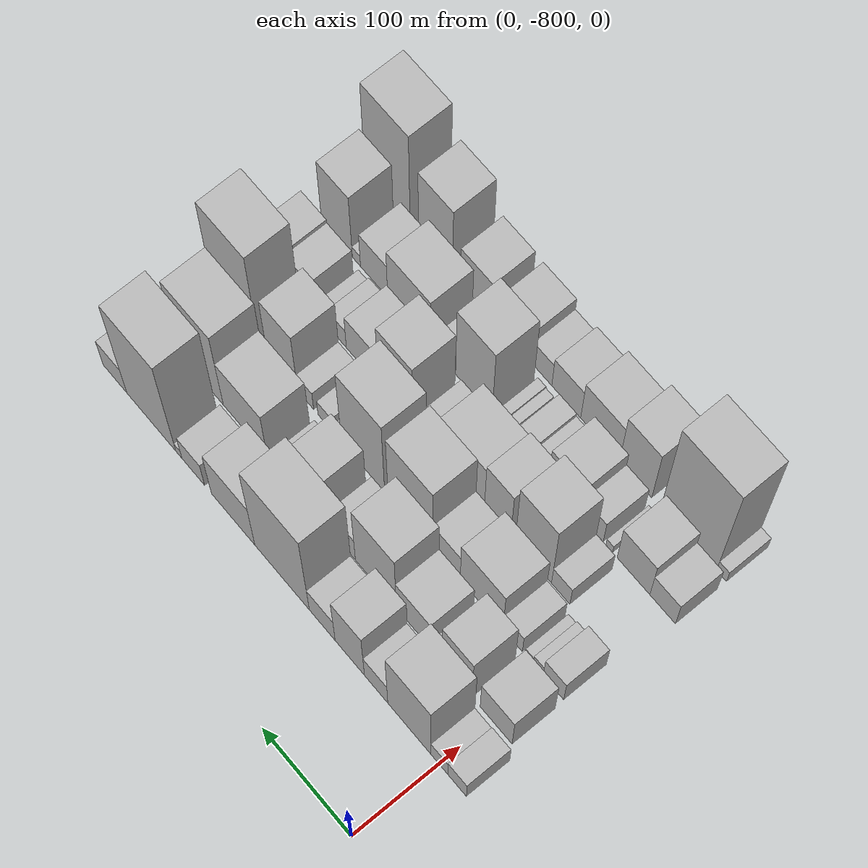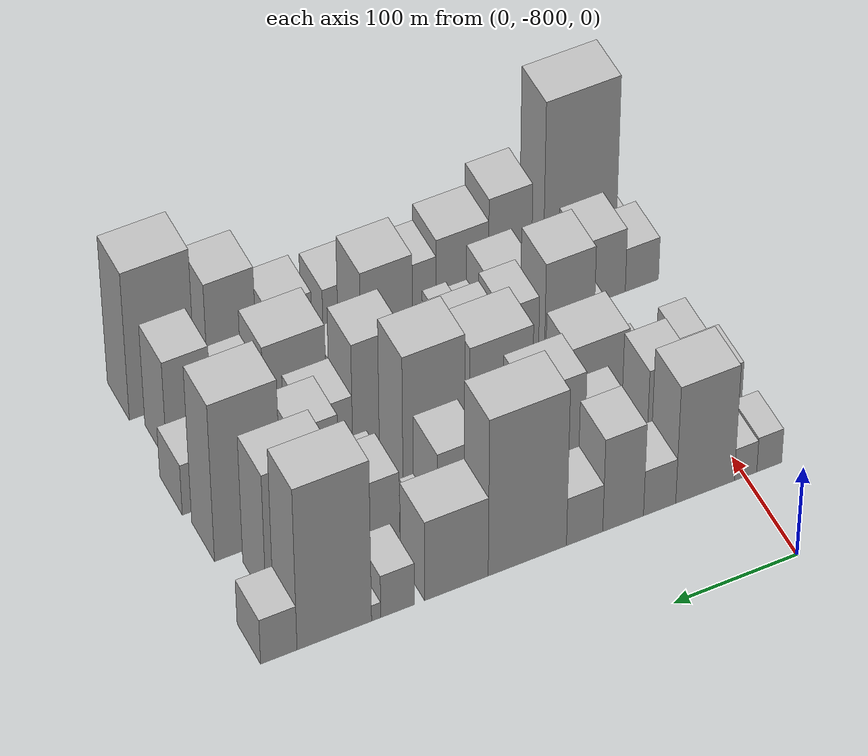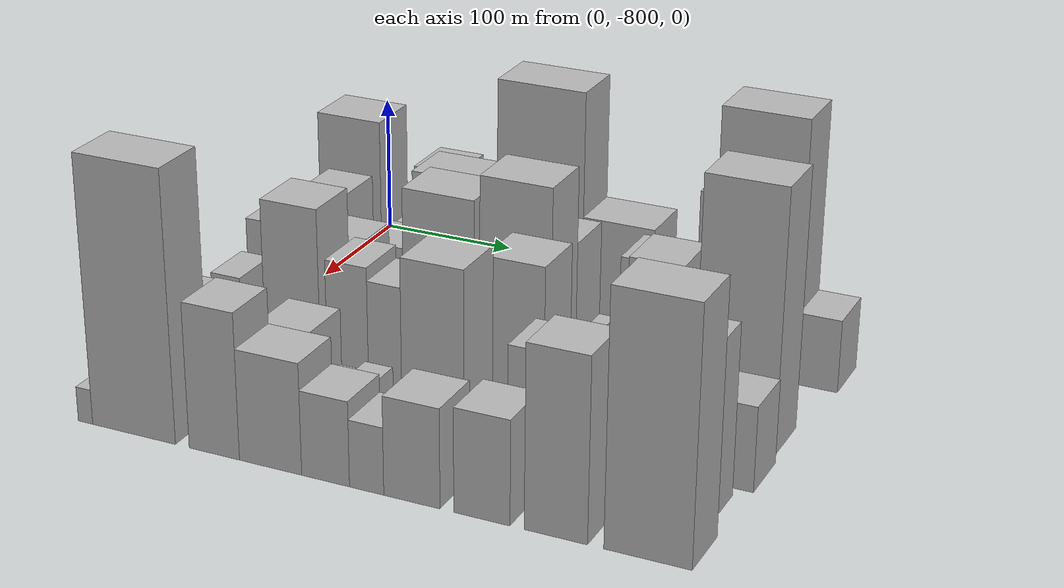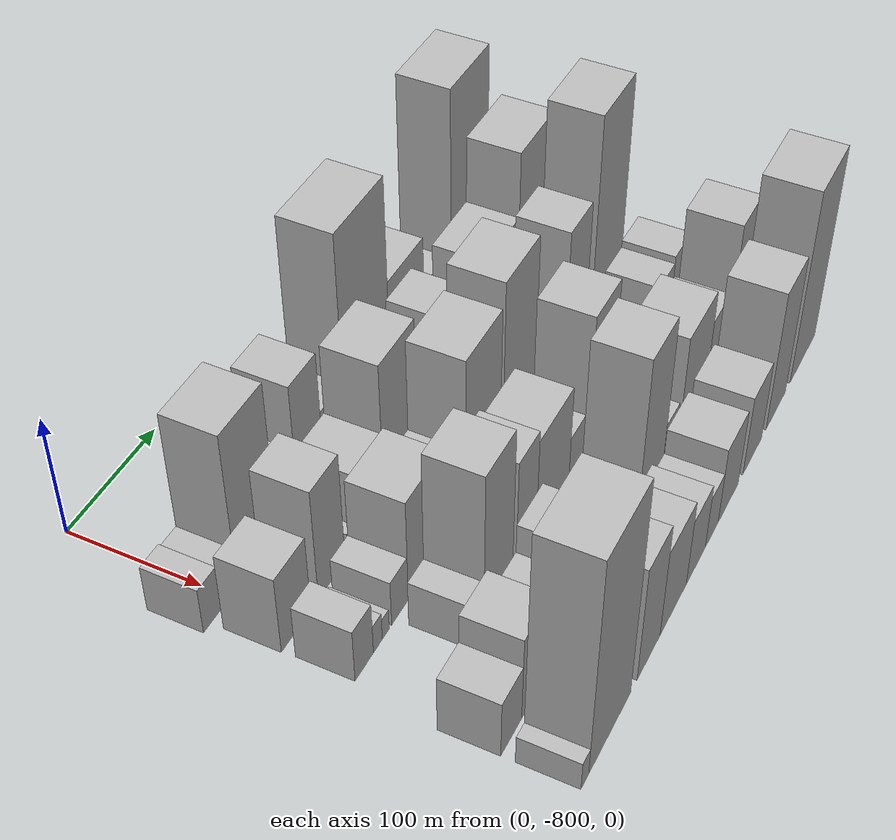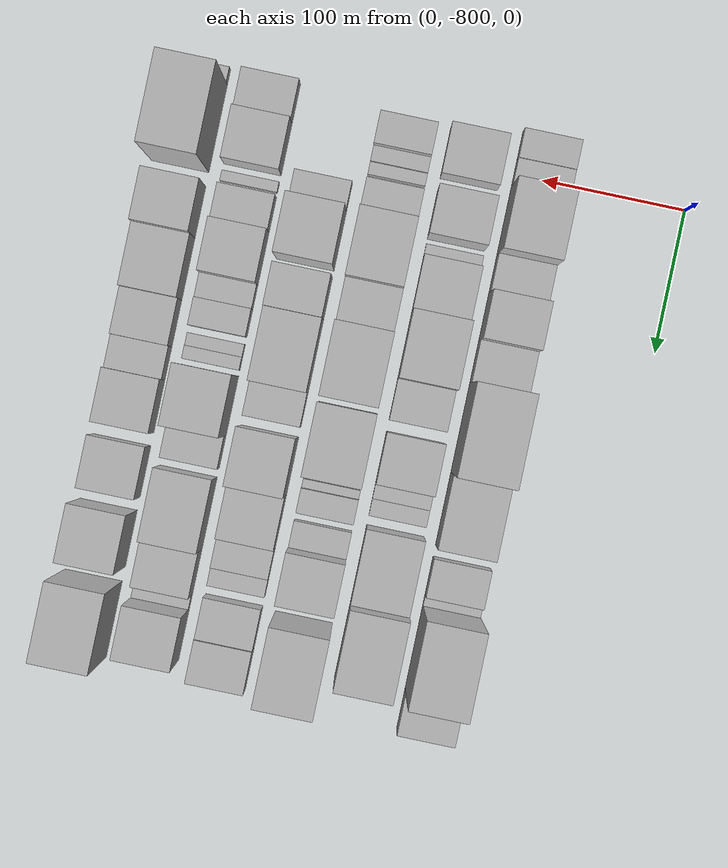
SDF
<sdf version="1.6">
 <world name="default">
  <model name="building_1">
   <static>1</static>
   <pose>100.0000 -819.7387 0 0.000000 0.000000 0.000000</pose>
   <link name="link">
    <pose>0 0 19.50 0 0 0</pose>
    <collision name="collision"><geometry><box><size>40.0000 20.5226 39.0000</size></box></geometry></collision>
    <visual name="visual">
     <cast_shadows>0</cast_shadows>
     <geometry><box><size>40.0000 20.5226 39.0000</size></box></geometry>
     <material>
      <script>
       <uri>model://HANNAS_wall/materials/scripts</uri>
       <uri>model://HANNAS_wall/materials/textures</uri>
       <name>vrc/HANNAS_wall</name>
      </script>
     </material>
    </visual>
   </link>
  </model>
  <model name="building_2">
   <static>1</static>
   <pose>100.0000 -800.1939 0 0.000000 0.000000 0.000000</pose>
   <link name="link">
    <pose>0 0 18.00 0 0 0</pose>
    <collision name="collision"><geometry><box><size>40.0000 18.5668 36.0000</size></box></geometry></collision>
    <visual name="visual">
     <cast_shadows>0</cast_shadows>
     <geometry><box><size>40.0000 18.5668 36.0000</size></box></geometry>
     <material>
      <script>
       <uri>model://HANNAS_wall/materials/scripts</uri>
       <uri>model://HANNAS_wall/materials/textures</uri>
       <name>vrc/HANNAS_wall</name>
      </script>
     </material>
    </visual>
   </link>
  </model>
  <model name="building_3">
   <static>1</static>
   <pose>100.0000 -766.8831 0 0.000000 0.000000 0.000000</pose>
   <link name="link">
    <pose>0 0 66.00 0 0 0</pose>
    <collision name="collision"><geometry><box><size>40.0000 48.0549 132.0000</size></box></geometry></collision>
    <visual name="visual">
     <cast_shadows>0</cast_shadows>
     <geometry><box><size>40.0000 48.0549 132.0000</size></box></geometry>
     <material>
      <script>
       <uri>model://HANNAS_wall/materials/scripts</uri>
       <uri>model://HANNAS_wall/materials/textures</uri>
       <name>vrc/HANNAS_wall</name>
      </script>
     </material>
    </visual>
   </link>
  </model>
  <model name="building_4">
   <static>1</static>
   <pose>100.0000 -729.6831 0 0.000000 0.000000 0.000000</pose>
   <link name="link">
    <pose>0 0 25.50 0 0 0</pose>
    <collision name="collision"><geometry><box><size>40.0000 26.3450 51.0000</size></box></geometry></collision>
    <visual name="visual">
     <cast_shadows>0</cast_shadows>
     <geometry><box><size>40.0000 26.3450 51.0000</size></box></geometry>
     <material>
      <script>
       <uri>model://HANNAS_wall/materials/scripts</uri>
       <uri>model://HANNAS_wall/materials/textures</uri>
       <name>vrc/HANNAS_wall</name>
      </script>
     </material>
    </visual>
   </link>
  </model>
  <model name="building_5">
   <static>1</static>
   <pose>100.0000 -699.9539 0 0.000000 0.000000 0.000000</pose>
   <link name="link">
    <pose>0 0 52.50 0 0 0</pose>
    <collision name="collision"><geometry><box><size>40.0000 33.1135 105.0000</size></box></geometry></collision>
    <visual name="visual">
     <cast_shadows>0</cast_shadows>
     <geometry><box><size>40.0000 33.1135 105.0000</size></box></geometry>
     <material>
      <script>
       <uri>model://HANNAS_wall/materials/scripts</uri>
       <uri>model://HANNAS_wall/materials/textures</uri>
       <name>vrc/HANNAS_wall</name>
      </script>
     </material>
    </visual>
   </link>
  </model>
  <model name="building_6">
   <static>1</static>
   <pose>100.0000 -668.6978 0 0.000000 0.000000 0.000000</pose>
   <link name="link">
    <pose>0 0 27.00 0 0 0</pose>
    <collision name="collision"><geometry><box><size>40.0000 29.3988 54.0000</size></box></geometry></collision>
    <visual name="visual">
     <cast_shadows>0</cast_shadows>
     <geometry><box><size>40.0000 29.3988 54.0000</size></box></geometry>
     <material>
      <script>
       <uri>model://HANNAS_wall/materials/scripts</uri>
       <uri>model://HANNAS_wall/materials/textures</uri>
       <name>vrc/HANNAS_wall</name>
      </script>
     </material>
    </visual>
   </link>
  </model>
  <model name="building_7">
   <static>1</static>
   <pose>100.0000 -622.5215 0 0.000000 0.000000 0.000000</pose>
   <link name="link">
    <pose>0 0 88.50 0 0 0</pose>
    <collision name="collision"><geometry><box><size>40.0000 62.9537 177.0000</size></box></geometry></collision>
    <visual name="visual">
     <cast_shadows>0</cast_shadows>
     <geometry><box><size>40.0000 62.9537 177.0000</size></box></geometry>
     <material>
      <script>
       <uri>model://HANNAS_wall/materials/scripts</uri>
       <uri>model://HANNAS_wall/materials/textures</uri>
       <name>vrc/HANNAS_wall</name>
      </script>
     </material>
    </visual>
   </link>
  </model>
  <model name="building_8">
   <static>1</static>
   <pose>100.0000 -565.6612 0 0.000000 0.000000 0.000000</pose>
   <link name="link">
    <pose>0 0 45.00 0 0 0</pose>
    <collision name="collision"><geometry><box><size>40.0000 50.7670 90.0000</size></box></geometry></collision>
    <visual name="visual">
     <cast_shadows>0</cast_shadows>
     <geometry><box><size>40.0000 50.7670 90.0000</size></box></geometry>
     <material>
      <script>
       <uri>model://HANNAS_wall/materials/scripts</uri>
       <uri>model://HANNAS_wall/materials/textures</uri>
       <name>vrc/HANNAS_wall</name>
      </script>
     </material>
    </visual>
   </link>
  </model>
  <model name="building_9">
   <static>1</static>
   <pose>100.0000 -518.8695 0 0.000000 0.000000 0.000000</pose>
   <link name="link">
    <pose>0 0 24.00 0 0 0</pose>
    <collision name="collision"><geometry><box><size>40.0000 26.8164 48.0000</size></box></geometry></collision>
    <visual name="visual">
     <cast_shadows>0</cast_shadows>
     <geometry><box><size>40.0000 26.8164 48.0000</size></box></geometry>
     <material>
      <script>
       <uri>model://HANNAS_wall/materials/scripts</uri>
       <uri>model://HANNAS_wall/materials/textures</uri>
       <name>vrc/HANNAS_wall</name>
      </script>
     </material>
    </visual>
   </link>
  </model>
  <model name="building_10">
   <static>1</static>
   <pose>100.0000 -501.8255 0 0.000000 0.000000 0.000000</pose>
   <link name="link">
    <pose>0 0 9.00 0 0 0</pose>
    <collision name="collision"><geometry><box><size>40.0000 7.2716 18.0000</size></box></geometry></collision>
    <visual name="visual">
     <cast_shadows>0</cast_shadows>
     <geometry><box><size>40.0000 7.2716 18.0000</size></box></geometry>
     <material>
      <script>
       <uri>model://HANNAS_wall/materials/scripts</uri>
       <uri>model://HANNAS_wall/materials/textures</uri>
       <name>vrc/HANNAS_wall</name>
      </script>
     </material>
    </visual>
   </link>
  </model>
  <model name="building_11">
   <static>1</static>
   <pose>100.0000 -468.8463 0 0.000000 0.000000 0.000000</pose>
   <link name="link">
    <pose>0 0 91.50 0 0 0</pose>
    <collision name="collision"><geometry><box><size>40.0000 58.6867 183.0000</size></box></geometry></collision>
    <visual name="visual">
     <cast_shadows>0</cast_shadows>
     <geometry><box><size>40.0000 58.6867 183.0000</size></box></geometry>
     <material>
      <script>
       <uri>model://HANNAS_wall/materials/scripts</uri>
       <uri>model://HANNAS_wall/materials/textures</uri>
       <name>vrc/HANNAS_wall</name>
      </script>
     </material>
    </visual>
   </link>
  </model>
  <model name="building_12">
   <static>1</static>
   <pose>100.0000 -425.2195 0 0.000000 0.000000 0.000000</pose>
   <link name="link">
    <pose>0 0 25.50 0 0 0</pose>
    <collision name="collision"><geometry><box><size>40.0000 28.5671 51.0000</size></box></geometry></collision>
    <visual name="visual">
     <cast_shadows>0</cast_shadows>
     <geometry><box><size>40.0000 28.5671 51.0000</size></box></geometry>
     <material>
      <script>
       <uri>model://HANNAS_wall/materials/scripts</uri>
       <uri>model://HANNAS_wall/materials/textures</uri>
       <name>vrc/HANNAS_wall</name>
      </script>
     </material>
    </visual>
   </link>
  </model>
  <model name="building_52">
   <static>1</static>
   <pose>149.0000 -804.3664 0 0.000000 0.000000 0.000000</pose>
   <link name="link">
    <pose>0 0 33.00 0 0 0</pose>
    <collision name="collision"><geometry><box><size>40.0000 35.2672 66.0000</size></box></geometry></collision>
    <visual name="visual">
     <cast_shadows>0</cast_shadows>
     <geometry><box><size>40.0000 35.2672 66.0000</size></box></geometry>
     <material>
      <script>
       <uri>model://HANNAS_wall/materials/scripts</uri>
       <uri>model://HANNAS_wall/materials/textures</uri>
       <name>vrc/HANNAS_wall</name>
      </script>
     </material>
    </visual>
   </link>
  </model>
  <model name="building_53">
   <static>1</static>
   <pose>149.0000 -760.9721 0 0.000000 0.000000 0.000000</pose>
   <link name="link">
    <pose>0 0 48.00 0 0 0</pose>
    <collision name="collision"><geometry><box><size>40.0000 33.5213 96.0000</size></box></geometry></collision>
    <visual name="visual">
     <cast_shadows>0</cast_shadows>
     <geometry><box><size>40.0000 33.5213 96.0000</size></box></geometry>
     <material>
      <script>
       <uri>model://HANNAS_wall/materials/scripts</uri>
       <uri>model://HANNAS_wall/materials/textures</uri>
       <name>vrc/HANNAS_wall</name>
      </script>
     </material>
    </visual>
   </link>
  </model>
  <model name="building_54">
   <static>1</static>
   <pose>149.0000 -735.8076 0 0.000000 0.000000 0.000000</pose>
   <link name="link">
    <pose>0 0 10.50 0 0 0</pose>
    <collision name="collision"><geometry><box><size>40.0000 8.8076 21.0000</size></box></geometry></collision>
    <visual name="visual">
     <cast_shadows>0</cast_shadows>
     <geometry><box><size>40.0000 8.8076 21.0000</size></box></geometry>
     <material>
      <script>
       <uri>model://HANNAS_wall/materials/scripts</uri>
       <uri>model://HANNAS_wall/materials/textures</uri>
       <name>vrc/HANNAS_wall</name>
      </script>
     </material>
    </visual>
   </link>
  </model>
  <model name="building_55">
   <static>1</static>
   <pose>149.0000 -712.1371 0 0.000000 0.000000 0.000000</pose>
   <link name="link">
    <pose>0 0 33.00 0 0 0</pose>
    <collision name="collision"><geometry><box><size>40.0000 38.5335 66.0000</size></box></geometry></collision>
    <visual name="visual">
     <cast_shadows>0</cast_shadows>
     <geometry><box><size>40.0000 38.5335 66.0000</size></box></geometry>
     <material>
      <script>
       <uri>model://HANNAS_wall/materials/scripts</uri>
       <uri>model://HANNAS_wall/materials/textures</uri>
       <name>vrc/HANNAS_wall</name>
      </script>
     </material>
    </visual>
   </link>
  </model>
  <model name="building_56">
   <static>1</static>
   <pose>149.0000 -669.6085 0 0.000000 0.000000 0.000000</pose>
   <link name="link">
    <pose>0 0 61.50 0 0 0</pose>
    <collision name="collision"><geometry><box><size>40.0000 46.5236 123.0000</size></box></geometry></collision>
    <visual name="visual">
     <cast_shadows>0</cast_shadows>
     <geometry><box><size>40.0000 46.5236 123.0000</size></box></geometry>
     <material>
      <script>
       <uri>model://HANNAS_wall/materials/scripts</uri>
       <uri>model://HANNAS_wall/materials/textures</uri>
       <name>vrc/HANNAS_wall</name>
      </script>
     </material>
    </visual>
   </link>
  </model>
  <model name="building_57">
   <static>1</static>
   <pose>149.0000 -632.0075 0 0.000000 0.000000 0.000000</pose>
   <link name="link">
    <pose>0 0 25.50 0 0 0</pose>
    <collision name="collision"><geometry><box><size>40.0000 28.6784 51.0000</size></box></geometry></collision>
    <visual name="visual">
     <cast_shadows>0</cast_shadows>
     <geometry><box><size>40.0000 28.6784 51.0000</size></box></geometry>
     <material>
      <script>
       <uri>model://HANNAS_wall/materials/scripts</uri>
       <uri>model://HANNAS_wall/materials/textures</uri>
       <name>vrc/HANNAS_wall</name>
      </script>
     </material>
    </visual>
   </link>
  </model>
  <model name="building_58">
   <static>1</static>
   <pose>149.0000 -591.9641 0 0.000000 0.000000 0.000000</pose>
   <link name="link">
    <pose>0 0 46.50 0 0 0</pose>
    <collision name="collision"><geometry><box><size>40.0000 35.4084 93.0000</size></box></geometry></collision>
    <visual name="visual">
     <cast_shadows>0</cast_shadows>
     <geometry><box><size>40.0000 35.4084 93.0000</size></box></geometry>
     <material>
      <script>
       <uri>model://HANNAS_wall/materials/scripts</uri>
       <uri>model://HANNAS_wall/materials/textures</uri>
       <name>vrc/HANNAS_wall</name>
      </script>
     </material>
    </visual>
   </link>
  </model>
  <model name="building_59">
   <static>1</static>
   <pose>149.0000 -568.5882 0 0.000000 0.000000 0.000000</pose>
   <link name="link">
    <pose>0 0 13.50 0 0 0</pose>
    <collision name="collision"><geometry><box><size>40.0000 11.3434 27.0000</size></box></geometry></collision>
    <visual name="visual">
     <cast_shadows>0</cast_shadows>
     <geometry><box><size>40.0000 11.3434 27.0000</size></box></geometry>
     <material>
      <script>
       <uri>model://HANNAS_wall/materials/scripts</uri>
       <uri>model://HANNAS_wall/materials/textures</uri>
       <name>vrc/HANNAS_wall</name>
      </script>
     </material>
    </visual>
   </link>
  </model>
  <model name="building_60">
   <static>1</static>
   <pose>149.0000 -556.9815 0 0.000000 0.000000 0.000000</pose>
   <link name="link">
    <pose>0 0 12.00 0 0 0</pose>
    <collision name="collision"><geometry><box><size>40.0000 11.8700 24.0000</size></box></geometry></collision>
    <visual name="visual">
     <cast_shadows>0</cast_shadows>
     <geometry><box><size>40.0000 11.8700 24.0000</size></box></geometry>
     <material>
      <script>
       <uri>model://HANNAS_wall/materials/scripts</uri>
       <uri>model://HANNAS_wall/materials/textures</uri>
       <name>vrc/HANNAS_wall</name>
      </script>
     </material>
    </visual>
   </link>
  </model>
  <model name="building_61">
   <static>1</static>
   <pose>149.0000 -518.2581 0 0.000000 0.000000 0.000000</pose>
   <link name="link">
    <pose>0 0 45.00 0 0 0</pose>
    <collision name="collision"><geometry><box><size>40.0000 51.5768 90.0000</size></box></geometry></collision>
    <visual name="visual">
     <cast_shadows>0</cast_shadows>
     <geometry><box><size>40.0000 51.5768 90.0000</size></box></geometry>
     <material>
      <script>
       <uri>model://HANNAS_wall/materials/scripts</uri>
       <uri>model://HANNAS_wall/materials/textures</uri>
       <name>vrc/HANNAS_wall</name>
      </script>
     </material>
    </visual>
   </link>
  </model>
  <model name="building_62">
   <static>1</static>
   <pose>149.0000 -465.1598 0 0.000000 0.000000 0.000000</pose>
   <link name="link">
    <pose>0 0 72.00 0 0 0</pose>
    <collision name="collision"><geometry><box><size>40.0000 54.6198 144.0000</size></box></geometry></collision>
    <visual name="visual">
     <cast_shadows>0</cast_shadows>
     <geometry><box><size>40.0000 54.6198 144.0000</size></box></geometry>
     <material>
      <script>
       <uri>model://HANNAS_wall/materials/scripts</uri>
       <uri>model://HANNAS_wall/materials/textures</uri>
       <name>vrc/HANNAS_wall</name>
      </script>
     </material>
    </visual>
   </link>
  </model>
  <model name="building_96">
   <static>1</static>
   <pose>198.0000 -809.6938 0 0.000000 0.000000 0.000000</pose>
   <link name="link">
    <pose>0 0 22.50 0 0 0</pose>
    <collision name="collision"><geometry><box><size>40.0000 22.6123 45.0000</size></box></geometry></collision>
    <visual name="visual">
     <cast_shadows>0</cast_shadows>
     <geometry><box><size>40.0000 22.6123 45.0000</size></box></geometry>
     <material>
      <script>
       <uri>model://HANNAS_wall/materials/scripts</uri>
       <uri>model://HANNAS_wall/materials/textures</uri>
       <name>vrc/HANNAS_wall</name>
      </script>
     </material>
    </visual>
   </link>
  </model>
  <model name="building_97">
   <static>1</static>
   <pose>198.0000 -792.8530 0 0.000000 0.000000 0.000000</pose>
   <link name="link">
    <pose>0 0 12.00 0 0 0</pose>
    <collision name="collision"><geometry><box><size>40.0000 11.0694 24.0000</size></box></geometry></collision>
    <visual name="visual">
     <cast_shadows>0</cast_shadows>
     <geometry><box><size>40.0000 11.0694 24.0000</size></box></geometry>
     <material>
      <script>
       <uri>model://HANNAS_wall/materials/scripts</uri>
       <uri>model://HANNAS_wall/materials/textures</uri>
       <name>vrc/HANNAS_wall</name>
      </script>
     </material>
    </visual>
   </link>
  </model>
  <model name="building_98">
   <static>1</static>
   <pose>198.0000 -782.8766 0 0.000000 0.000000 0.000000</pose>
   <link name="link">
    <pose>0 0 9.00 0 0 0</pose>
    <collision name="collision"><geometry><box><size>40.0000 8.8832 18.0000</size></box></geometry></collision>
    <visual name="visual">
     <cast_shadows>0</cast_shadows>
     <geometry><box><size>40.0000 8.8832 18.0000</size></box></geometry>
     <material>
      <script>
       <uri>model://HANNAS_wall/materials/scripts</uri>
       <uri>model://HANNAS_wall/materials/textures</uri>
       <name>vrc/HANNAS_wall</name>
      </script>
     </material>
    </visual>
   </link>
  </model>
  <model name="building_99">
   <static>1</static>
   <pose>198.0000 -764.6208 0 0.000000 0.000000 0.000000</pose>
   <link name="link">
    <pose>0 0 19.50 0 0 0</pose>
    <collision name="collision"><geometry><box><size>40.0000 21.6284 39.0000</size></box></geometry></collision>
    <visual name="visual">
     <cast_shadows>0</cast_shadows>
     <geometry><box><size>40.0000 21.6284 39.0000</size></box></geometry>
     <material>
      <script>
       <uri>model://HANNAS_wall/materials/scripts</uri>
       <uri>model://HANNAS_wall/materials/textures</uri>
       <name>vrc/HANNAS_wall</name>
      </script>
     </material>
    </visual>
   </link>
  </model>
  <model name="building_100">
   <static>1</static>
   <pose>198.0000 -729.8964 0 0.000000 0.000000 0.000000</pose>
   <link name="link">
    <pose>0 0 43.50 0 0 0</pose>
    <collision name="collision"><geometry><box><size>40.0000 47.8205 87.0000</size></box></geometry></collision>
    <visual name="visual">
     <cast_shadows>0</cast_shadows>
     <geometry><box><size>40.0000 47.8205 87.0000</size></box></geometry>
     <material>
      <script>
       <uri>model://HANNAS_wall/materials/scripts</uri>
       <uri>model://HANNAS_wall/materials/textures</uri>
       <name>vrc/HANNAS_wall</name>
      </script>
     </material>
    </visual>
   </link>
  </model>
  <model name="building_101">
   <static>1</static>
   <pose>198.0000 -690.4133 0 0.000000 0.000000 0.000000</pose>
   <link name="link">
    <pose>0 0 28.50 0 0 0</pose>
    <collision name="collision"><geometry><box><size>40.0000 31.1456 57.0000</size></box></geometry></collision>
    <visual name="visual">
     <cast_shadows>0</cast_shadows>
     <geometry><box><size>40.0000 31.1456 57.0000</size></box></geometry>
     <material>
      <script>
       <uri>model://HANNAS_wall/materials/scripts</uri>
       <uri>model://HANNAS_wall/materials/textures</uri>
       <name>vrc/HANNAS_wall</name>
      </script>
     </material>
    </visual>
   </link>
  </model>
  <model name="building_102">
   <static>1</static>
   <pose>198.0000 -649.4238 0 0.000000 0.000000 0.000000</pose>
   <link name="link">
    <pose>0 0 66.00 0 0 0</pose>
    <collision name="collision"><geometry><box><size>40.0000 50.8333 132.0000</size></box></geometry></collision>
    <visual name="visual">
     <cast_shadows>0</cast_shadows>
     <geometry><box><size>40.0000 50.8333 132.0000</size></box></geometry>
     <material>
      <script>
       <uri>model://HANNAS_wall/materials/scripts</uri>
       <uri>model://HANNAS_wall/materials/textures</uri>
       <name>vrc/HANNAS_wall</name>
      </script>
     </material>
    </visual>
   </link>
  </model>
  <model name="building_103">
   <static>1</static>
   <pose>198.0000 -595.1270 0 0.000000 0.000000 0.000000</pose>
   <link name="link">
    <pose>0 0 75.00 0 0 0</pose>
    <collision name="collision"><geometry><box><size>40.0000 49.7602 150.0000</size></box></geometry></collision>
    <visual name="visual">
     <cast_shadows>0</cast_shadows>
     <geometry><box><size>40.0000 49.7602 150.0000</size></box></geometry>
     <material>
      <script>
       <uri>model://HANNAS_wall/materials/scripts</uri>
       <uri>model://HANNAS_wall/materials/textures</uri>
       <name>vrc/HANNAS_wall</name>
      </script>
     </material>
    </visual>
   </link>
  </model>
  <model name="building_104">
   <static>1</static>
   <pose>198.0000 -563.1306 0 0.000000 0.000000 0.000000</pose>
   <link name="link">
    <pose>0 0 7.50 0 0 0</pose>
    <collision name="collision"><geometry><box><size>40.0000 6.2326 15.0000</size></box></geometry></collision>
    <visual name="visual">
     <cast_shadows>0</cast_shadows>
     <geometry><box><size>40.0000 6.2326 15.0000</size></box></geometry>
     <material>
      <script>
       <uri>model://HANNAS_wall/materials/scripts</uri>
       <uri>model://HANNAS_wall/materials/textures</uri>
       <name>vrc/HANNAS_wall</name>
      </script>
     </material>
    </visual>
   </link>
  </model>
  <model name="building_105">
   <static>1</static>
   <pose>198.0000 -551.3406 0 0.000000 0.000000 0.000000</pose>
   <link name="link">
    <pose>0 0 15.00 0 0 0</pose>
    <collision name="collision"><geometry><box><size>40.0000 17.3473 30.0000</size></box></geometry></collision>
    <visual name="visual">
     <cast_shadows>0</cast_shadows>
     <geometry><box><size>40.0000 17.3473 30.0000</size></box></geometry>
     <material>
      <script>
       <uri>model://HANNAS_wall/materials/scripts</uri>
       <uri>model://HANNAS_wall/materials/textures</uri>
       <name>vrc/HANNAS_wall</name>
      </script>
     </material>
    </visual>
   </link>
  </model>
  <model name="building_106">
   <static>1</static>
   <pose>198.0000 -528.3417 0 0.000000 0.000000 0.000000</pose>
   <link name="link">
    <pose>0 0 18.00 0 0 0</pose>
    <collision name="collision"><geometry><box><size>40.0000 18.6507 36.0000</size></box></geometry></collision>
    <visual name="visual">
     <cast_shadows>0</cast_shadows>
     <geometry><box><size>40.0000 18.6507 36.0000</size></box></geometry>
     <material>
      <script>
       <uri>model://HANNAS_wall/materials/scripts</uri>
       <uri>model://HANNAS_wall/materials/textures</uri>
       <name>vrc/HANNAS_wall</name>
      </script>
     </material>
    </visual>
   </link>
  </model>
  <model name="building_107">
   <static>1</static>
   <pose>198.0000 -501.0726 0 0.000000 0.000000 0.000000</pose>
   <link name="link">
    <pose>0 0 57.00 0 0 0</pose>
    <collision name="collision"><geometry><box><size>40.0000 35.8875 114.0000</size></box></geometry></collision>
    <visual name="visual">
     <cast_shadows>0</cast_shadows>
     <geometry><box><size>40.0000 35.8875 114.0000</size></box></geometry>
     <material>
      <script>
       <uri>model://HANNAS_wall/materials/scripts</uri>
       <uri>model://HANNAS_wall/materials/textures</uri>
       <name>vrc/HANNAS_wall</name>
      </script>
     </material>
    </visual>
   </link>
  </model>
  <model name="building_108">
   <static>1</static>
   <pose>198.0000 -446.3652 0 0.000000 0.000000 0.000000</pose>
   <link name="link">
    <pose>0 0 88.50 0 0 0</pose>
    <collision name="collision"><geometry><box><size>40.0000 53.5273 177.0000</size></box></geometry></collision>
    <visual name="visual">
     <cast_shadows>0</cast_shadows>
     <geometry><box><size>40.0000 53.5273 177.0000</size></box></geometry>
     <material>
      <script>
       <uri>model://HANNAS_wall/materials/scripts</uri>
       <uri>model://HANNAS_wall/materials/textures</uri>
       <name>vrc/HANNAS_wall</name>
      </script>
     </material>
    </visual>
   </link>
  </model>
  <model name="building_146">
   <static>1</static>
   <pose>247.0000 -760.3157 0 0.000000 0.000000 0.000000</pose>
   <link name="link">
    <pose>0 0 19.50 0 0 0</pose>
    <collision name="collision"><geometry><box><size>40.0000 20.4562 39.0000</size></box></geometry></collision>
    <visual name="visual">
     <cast_shadows>0</cast_shadows>
     <geometry><box><size>40.0000 20.4562 39.0000</size></box></geometry>
     <material>
      <script>
       <uri>model://HANNAS_wall/materials/scripts</uri>
       <uri>model://HANNAS_wall/materials/textures</uri>
       <name>vrc/HANNAS_wall</name>
      </script>
     </material>
    </visual>
   </link>
  </model>
  <model name="building_147">
   <static>1</static>
   <pose>247.0000 -729.7890 0 0.000000 0.000000 0.000000</pose>
   <link name="link">
    <pose>0 0 64.50 0 0 0</pose>
    <collision name="collision"><geometry><box><size>40.0000 40.5972 129.0000</size></box></geometry></collision>
    <visual name="visual">
     <cast_shadows>0</cast_shadows>
     <geometry><box><size>40.0000 40.5972 129.0000</size></box></geometry>
     <material>
      <script>
       <uri>model://HANNAS_wall/materials/scripts</uri>
       <uri>model://HANNAS_wall/materials/textures</uri>
       <name>vrc/HANNAS_wall</name>
      </script>
     </material>
    </visual>
   </link>
  </model>
  <model name="building_148">
   <static>1</static>
   <pose>247.0000 -689.6627 0 0.000000 0.000000 0.000000</pose>
   <link name="link">
    <pose>0 0 48.00 0 0 0</pose>
    <collision name="collision"><geometry><box><size>40.0000 29.6553 96.0000</size></box></geometry></collision>
    <visual name="visual">
     <cast_shadows>0</cast_shadows>
     <geometry><box><size>40.0000 29.6553 96.0000</size></box></geometry>
     <material>
      <script>
       <uri>model://HANNAS_wall/materials/scripts</uri>
       <uri>model://HANNAS_wall/materials/textures</uri>
       <name>vrc/HANNAS_wall</name>
      </script>
     </material>
    </visual>
   </link>
  </model>
  <model name="building_149">
   <static>1</static>
   <pose>247.0000 -649.4043 0 0.000000 0.000000 0.000000</pose>
   <link name="link">
    <pose>0 0 43.50 0 0 0</pose>
    <collision name="collision"><geometry><box><size>40.0000 50.8614 87.0000</size></box></geometry></collision>
    <visual name="visual">
     <cast_shadows>0</cast_shadows>
     <geometry><box><size>40.0000 50.8614 87.0000</size></box></geometry>
     <material>
      <script>
       <uri>model://HANNAS_wall/materials/scripts</uri>
       <uri>model://HANNAS_wall/materials/textures</uri>
       <name>vrc/HANNAS_wall</name>
      </script>
     </material>
    </visual>
   </link>
  </model>
  <model name="building_150">
   <static>1</static>
   <pose>247.0000 -612.0534 0 0.000000 0.000000 0.000000</pose>
   <link name="link">
    <pose>0 0 21.00 0 0 0</pose>
    <collision name="collision"><geometry><box><size>40.0000 23.8405 42.0000</size></box></geometry></collision>
    <visual name="visual">
     <cast_shadows>0</cast_shadows>
     <geometry><box><size>40.0000 23.8405 42.0000</size></box></geometry>
     <material>
      <script>
       <uri>model://HANNAS_wall/materials/scripts</uri>
       <uri>model://HANNAS_wall/materials/textures</uri>
       <name>vrc/HANNAS_wall</name>
      </script>
     </material>
    </visual>
   </link>
  </model>
  <model name="building_151">
   <static>1</static>
   <pose>247.0000 -573.0589 0 0.000000 0.000000 0.000000</pose>
   <link name="link">
    <pose>0 0 60.00 0 0 0</pose>
    <collision name="collision"><geometry><box><size>40.0000 40.1486 120.0000</size></box></geometry></collision>
    <visual name="visual">
     <cast_shadows>0</cast_shadows>
     <geometry><box><size>40.0000 40.1486 120.0000</size></box></geometry>
     <material>
      <script>
       <uri>model://HANNAS_wall/materials/scripts</uri>
       <uri>model://HANNAS_wall/materials/textures</uri>
       <name>vrc/HANNAS_wall</name>
      </script>
     </material>
    </visual>
   </link>
  </model>
  <model name="building_152">
   <static>1</static>
   <pose>247.0000 -534.2959 0 0.000000 0.000000 0.000000</pose>
   <link name="link">
    <pose>0 0 31.50 0 0 0</pose>
    <collision name="collision"><geometry><box><size>40.0000 37.3773 63.0000</size></box></geometry></collision>
    <visual name="visual">
     <cast_shadows>0</cast_shadows>
     <geometry><box><size>40.0000 37.3773 63.0000</size></box></geometry>
     <material>
      <script>
       <uri>model://HANNAS_wall/materials/scripts</uri>
       <uri>model://HANNAS_wall/materials/textures</uri>
       <name>vrc/HANNAS_wall</name>
      </script>
     </material>
    </visual>
   </link>
  </model>
  <model name="building_153">
   <static>1</static>
   <pose>247.0000 -505.0467 0 0.000000 0.000000 0.000000</pose>
   <link name="link">
    <pose>0 0 18.00 0 0 0</pose>
    <collision name="collision"><geometry><box><size>40.0000 21.1213 36.0000</size></box></geometry></collision>
    <visual name="visual">
     <cast_shadows>0</cast_shadows>
     <geometry><box><size>40.0000 21.1213 36.0000</size></box></geometry>
     <material>
      <script>
       <uri>model://HANNAS_wall/materials/scripts</uri>
       <uri>model://HANNAS_wall/materials/textures</uri>
       <name>vrc/HANNAS_wall</name>
      </script>
     </material>
    </visual>
   </link>
  </model>
  <model name="building_154">
   <static>1</static>
   <pose>247.0000 -488.1256 0 0.000000 0.000000 0.000000</pose>
   <link name="link">
    <pose>0 0 13.50 0 0 0</pose>
    <collision name="collision"><geometry><box><size>40.0000 12.7208 27.0000</size></box></geometry></collision>
    <visual name="visual">
     <cast_shadows>0</cast_shadows>
     <geometry><box><size>40.0000 12.7208 27.0000</size></box></geometry>
     <material>
      <script>
       <uri>model://HANNAS_wall/materials/scripts</uri>
       <uri>model://HANNAS_wall/materials/textures</uri>
       <name>vrc/HANNAS_wall</name>
      </script>
     </material>
    </visual>
   </link>
  </model>
  <model name="building_155">
   <static>1</static>
   <pose>247.0000 -460.4381 0 0.000000 0.000000 0.000000</pose>
   <link name="link">
    <pose>0 0 25.50 0 0 0</pose>
    <collision name="collision"><geometry><box><size>40.0000 28.6541 51.0000</size></box></geometry></collision>
    <visual name="visual">
     <cast_shadows>0</cast_shadows>
     <geometry><box><size>40.0000 28.6541 51.0000</size></box></geometry>
     <material>
      <script>
       <uri>model://HANNAS_wall/materials/scripts</uri>
       <uri>model://HANNAS_wall/materials/textures</uri>
       <name>vrc/HANNAS_wall</name>
      </script>
     </material>
    </visual>
   </link>
  </model>
  <model name="building_156">
   <static>1</static>
   <pose>247.0000 -431.1607 0 0.000000 0.000000 0.000000</pose>
   <link name="link">
    <pose>0 0 28.50 0 0 0</pose>
    <collision name="collision"><geometry><box><size>40.0000 29.9008 57.0000</size></box></geometry></collision>
    <visual name="visual">
     <cast_shadows>0</cast_shadows>
     <geometry><box><size>40.0000 29.9008 57.0000</size></box></geometry>
     <material>
      <script>
       <uri>model://HANNAS_wall/materials/scripts</uri>
       <uri>model://HANNAS_wall/materials/textures</uri>
       <name>vrc/HANNAS_wall</name>
      </script>
     </material>
    </visual>
   </link>
  </model>
  <model name="building_191">
   <static>1</static>
   <pose>296.0000 -816.0203 0 0.000000 0.000000 0.000000</pose>
   <link name="link">
    <pose>0 0 24.00 0 0 0</pose>
    <collision name="collision"><geometry><box><size>40.0000 27.9594 48.0000</size></box></geometry></collision>
    <visual name="visual">
     <cast_shadows>0</cast_shadows>
     <geometry><box><size>40.0000 27.9594 48.0000</size></box></geometry>
     <material>
      <script>
       <uri>model://HANNAS_wall/materials/scripts</uri>
       <uri>model://HANNAS_wall/materials/textures</uri>
       <name>vrc/HANNAS_wall</name>
      </script>
     </material>
    </visual>
   </link>
  </model>
  <model name="building_192">
   <static>1</static>
   <pose>296.0000 -784.0029 0 0.000000 0.000000 0.000000</pose>
   <link name="link">
    <pose>0 0 36.00 0 0 0</pose>
    <collision name="collision"><geometry><box><size>40.0000 36.0754 72.0000</size></box></geometry></collision>
    <visual name="visual">
     <cast_shadows>0</cast_shadows>
     <geometry><box><size>40.0000 36.0754 72.0000</size></box></geometry>
     <material>
      <script>
       <uri>model://HANNAS_wall/materials/scripts</uri>
       <uri>model://HANNAS_wall/materials/textures</uri>
       <name>vrc/HANNAS_wall</name>
      </script>
     </material>
    </visual>
   </link>
  </model>
  <model name="building_193">
   <static>1</static>
   <pose>296.0000 -757.2498 0 0.000000 0.000000 0.000000</pose>
   <link name="link">
    <pose>0 0 7.50 0 0 0</pose>
    <collision name="collision"><geometry><box><size>40.0000 7.4308 15.0000</size></box></geometry></collision>
    <visual name="visual">
     <cast_shadows>0</cast_shadows>
     <geometry><box><size>40.0000 7.4308 15.0000</size></box></geometry>
     <material>
      <script>
       <uri>model://HANNAS_wall/materials/scripts</uri>
       <uri>model://HANNAS_wall/materials/textures</uri>
       <name>vrc/HANNAS_wall</name>
      </script>
     </material>
    </visual>
   </link>
  </model>
  <model name="building_194">
   <static>1</static>
   <pose>296.0000 -738.2136 0 0.000000 0.000000 0.000000</pose>
   <link name="link">
    <pose>0 0 22.50 0 0 0</pose>
    <collision name="collision"><geometry><box><size>40.0000 24.6415 45.0000</size></box></geometry></collision>
    <visual name="visual">
     <cast_shadows>0</cast_shadows>
     <geometry><box><size>40.0000 24.6415 45.0000</size></box></geometry>
     <material>
      <script>
       <uri>model://HANNAS_wall/materials/scripts</uri>
       <uri>model://HANNAS_wall/materials/textures</uri>
       <name>vrc/HANNAS_wall</name>
      </script>
     </material>
    </visual>
   </link>
  </model>
  <model name="building_195">
   <static>1</static>
   <pose>296.0000 -707.5066 0 0.000000 0.000000 0.000000</pose>
   <link name="link">
    <pose>0 0 34.50 0 0 0</pose>
    <collision name="collision"><geometry><box><size>40.0000 36.7725 69.0000</size></box></geometry></collision>
    <visual name="visual">
     <cast_shadows>0</cast_shadows>
     <geometry><box><size>40.0000 36.7725 69.0000</size></box></geometry>
     <material>
      <script>
       <uri>model://HANNAS_wall/materials/scripts</uri>
       <uri>model://HANNAS_wall/materials/textures</uri>
       <name>vrc/HANNAS_wall</name>
      </script>
     </material>
    </visual>
   </link>
  </model>
  <model name="building_196">
   <static>1</static>
   <pose>296.0000 -680.5355 0 0.000000 0.000000 0.000000</pose>
   <link name="link">
    <pose>0 0 15.00 0 0 0</pose>
    <collision name="collision"><geometry><box><size>40.0000 17.1696 30.0000</size></box></geometry></collision>
    <visual name="visual">
     <cast_shadows>0</cast_shadows>
     <geometry><box><size>40.0000 17.1696 30.0000</size></box></geometry>
     <material>
      <script>
       <uri>model://HANNAS_wall/materials/scripts</uri>
       <uri>model://HANNAS_wall/materials/textures</uri>
       <name>vrc/HANNAS_wall</name>
      </script>
     </material>
    </visual>
   </link>
  </model>
  <model name="building_197">
   <static>1</static>
   <pose>296.0000 -662.2064 0 0.000000 0.000000 0.000000</pose>
   <link name="link">
    <pose>0 0 18.00 0 0 0</pose>
    <collision name="collision"><geometry><box><size>40.0000 19.4887 36.0000</size></box></geometry></collision>
    <visual name="visual">
     <cast_shadows>0</cast_shadows>
     <geometry><box><size>40.0000 19.4887 36.0000</size></box></geometry>
     <material>
      <script>
       <uri>model://HANNAS_wall/materials/scripts</uri>
       <uri>model://HANNAS_wall/materials/textures</uri>
       <name>vrc/HANNAS_wall</name>
      </script>
     </material>
    </visual>
   </link>
  </model>
  <model name="building_198">
   <static>1</static>
   <pose>296.0000 -643.0014 0 0.000000 0.000000 0.000000</pose>
   <link name="link">
    <pose>0 0 9.00 0 0 0</pose>
    <collision name="collision"><geometry><box><size>40.0000 8.9213 18.0000</size></box></geometry></collision>
    <visual name="visual">
     <cast_shadows>0</cast_shadows>
     <geometry><box><size>40.0000 8.9213 18.0000</size></box></geometry>
     <material>
      <script>
       <uri>model://HANNAS_wall/materials/scripts</uri>
       <uri>model://HANNAS_wall/materials/textures</uri>
       <name>vrc/HANNAS_wall</name>
      </script>
     </material>
    </visual>
   </link>
  </model>
  <model name="building_199">
   <static>1</static>
   <pose>296.0000 -633.9456 0 0.000000 0.000000 0.000000</pose>
   <link name="link">
    <pose>0 0 10.50 0 0 0</pose>
    <collision name="collision"><geometry><box><size>40.0000 9.1903 21.0000</size></box></geometry></collision>
    <visual name="visual">
     <cast_shadows>0</cast_shadows>
     <geometry><box><size>40.0000 9.1903 21.0000</size></box></geometry>
     <material>
      <script>
       <uri>model://HANNAS_wall/materials/scripts</uri>
       <uri>model://HANNAS_wall/materials/textures</uri>
       <name>vrc/HANNAS_wall</name>
      </script>
     </material>
    </visual>
   </link>
  </model>
  <model name="building_200">
   <static>1</static>
   <pose>296.0000 -604.3608 0 0.000000 0.000000 0.000000</pose>
   <link name="link">
    <pose>0 0 66.00 0 0 0</pose>
    <collision name="collision"><geometry><box><size>40.0000 41.9792 132.0000</size></box></geometry></collision>
    <visual name="visual">
     <cast_shadows>0</cast_shadows>
     <geometry><box><size>40.0000 41.9792 132.0000</size></box></geometry>
     <material>
      <script>
       <uri>model://HANNAS_wall/materials/scripts</uri>
       <uri>model://HANNAS_wall/materials/textures</uri>
       <name>vrc/HANNAS_wall</name>
      </script>
     </material>
    </visual>
   </link>
  </model>
  <model name="building_201">
   <static>1</static>
   <pose>296.0000 -572.0030 0 0.000000 0.000000 0.000000</pose>
   <link name="link">
    <pose>0 0 19.50 0 0 0</pose>
    <collision name="collision"><geometry><box><size>40.0000 22.7363 39.0000</size></box></geometry></collision>
    <visual name="visual">
     <cast_shadows>0</cast_shadows>
     <geometry><box><size>40.0000 22.7363 39.0000</size></box></geometry>
     <material>
      <script>
       <uri>model://HANNAS_wall/materials/scripts</uri>
       <uri>model://HANNAS_wall/materials/textures</uri>
       <name>vrc/HANNAS_wall</name>
      </script>
     </material>
    </visual>
   </link>
  </model>
  <model name="building_202">
   <static>1</static>
   <pose>296.0000 -529.4546 0 0.000000 0.000000 0.000000</pose>
   <link name="link">
    <pose>0 0 45.00 0 0 0</pose>
    <collision name="collision"><geometry><box><size>40.0000 50.3605 90.0000</size></box></geometry></collision>
    <visual name="visual">
     <cast_shadows>0</cast_shadows>
     <geometry><box><size>40.0000 50.3605 90.0000</size></box></geometry>
     <material>
      <script>
       <uri>model://HANNAS_wall/materials/scripts</uri>
       <uri>model://HANNAS_wall/materials/textures</uri>
       <name>vrc/HANNAS_wall</name>
      </script>
     </material>
    </visual>
   </link>
  </model>
  <model name="building_203">
   <static>1</static>
   <pose>296.0000 -488.2590 0 0.000000 0.000000 0.000000</pose>
   <link name="link">
    <pose>0 0 31.50 0 0 0</pose>
    <collision name="collision"><geometry><box><size>40.0000 32.0307 63.0000</size></box></geometry></collision>
    <visual name="visual">
     <cast_shadows>0</cast_shadows>
     <geometry><box><size>40.0000 32.0307 63.0000</size></box></geometry>
     <material>
      <script>
       <uri>model://HANNAS_wall/materials/scripts</uri>
       <uri>model://HANNAS_wall/materials/textures</uri>
       <name>vrc/HANNAS_wall</name>
      </script>
     </material>
    </visual>
   </link>
  </model>
  <model name="building_204">
   <static>1</static>
   <pose>296.0000 -467.4617 0 0.000000 0.000000 0.000000</pose>
   <link name="link">
    <pose>0 0 10.50 0 0 0</pose>
    <collision name="collision"><geometry><box><size>40.0000 9.5639 21.0000</size></box></geometry></collision>
    <visual name="visual">
     <cast_shadows>0</cast_shadows>
     <geometry><box><size>40.0000 9.5639 21.0000</size></box></geometry>
     <material>
      <script>
       <uri>model://HANNAS_wall/materials/scripts</uri>
       <uri>model://HANNAS_wall/materials/textures</uri>
       <name>vrc/HANNAS_wall</name>
      </script>
     </material>
    </visual>
   </link>
  </model>
  <model name="building_205">
   <static>1</static>
   <pose>296.0000 -444.4138 0 0.000000 0.000000 0.000000</pose>
   <link name="link">
    <pose>0 0 57.00 0 0 0</pose>
    <collision name="collision"><geometry><box><size>40.0000 36.5318 114.0000</size></box></geometry></collision>
    <visual name="visual">
     <cast_shadows>0</cast_shadows>
     <geometry><box><size>40.0000 36.5318 114.0000</size></box></geometry>
     <material>
      <script>
       <uri>model://HANNAS_wall/materials/scripts</uri>
       <uri>model://HANNAS_wall/materials/textures</uri>
       <name>vrc/HANNAS_wall</name>
      </script>
     </material>
    </visual>
   </link>
  </model>
  <model name="building_243">
   <static>1</static>
   <pose>345.0000 -824.5834 0 0.000000 0.000000 0.000000</pose>
   <link name="link">
    <pose>0 0 12.00 0 0 0</pose>
    <collision name="collision"><geometry><box><size>40.0000 10.8333 24.0000</size></box></geometry></collision>
    <visual name="visual">
     <cast_shadows>0</cast_shadows>
     <geometry><box><size>40.0000 10.8333 24.0000</size></box></geometry>
     <material>
      <script>
       <uri>model://HANNAS_wall/materials/scripts</uri>
       <uri>model://HANNAS_wall/materials/textures</uri>
       <name>vrc/HANNAS_wall</name>
      </script>
     </material>
    </visual>
   </link>
  </model>
  <model name="building_244">
   <static>1</static>
   <pose>345.0000 -788.5382 0 0.000000 0.000000 0.000000</pose>
   <link name="link">
    <pose>0 0 91.50 0 0 0</pose>
    <collision name="collision"><geometry><box><size>40.0000 61.2570 183.0000</size></box></geometry></collision>
    <visual name="visual">
     <cast_shadows>0</cast_shadows>
     <geometry><box><size>40.0000 61.2570 183.0000</size></box></geometry>
     <material>
      <script>
       <uri>model://HANNAS_wall/materials/scripts</uri>
       <uri>model://HANNAS_wall/materials/textures</uri>
       <name>vrc/HANNAS_wall</name>
      </script>
     </material>
    </visual>
   </link>
  </model>
  <model name="building_245">
   <static>1</static>
   <pose>345.0000 -729.9110 0 0.000000 0.000000 0.000000</pose>
   <link name="link">
    <pose>0 0 49.50 0 0 0</pose>
    <collision name="collision"><geometry><box><size>40.0000 35.9974 99.0000</size></box></geometry></collision>
    <visual name="visual">
     <cast_shadows>0</cast_shadows>
     <geometry><box><size>40.0000 35.9974 99.0000</size></box></geometry>
     <material>
      <script>
       <uri>model://HANNAS_wall/materials/scripts</uri>
       <uri>model://HANNAS_wall/materials/textures</uri>
       <name>vrc/HANNAS_wall</name>
      </script>
     </material>
    </visual>
   </link>
  </model>
  <model name="building_246">
   <static>1</static>
   <pose>345.0000 -690.1138 0 0.000000 0.000000 0.000000</pose>
   <link name="link">
    <pose>0 0 37.50 0 0 0</pose>
    <collision name="collision"><geometry><box><size>40.0000 43.5972 75.0000</size></box></geometry></collision>
    <visual name="visual">
     <cast_shadows>0</cast_shadows>
     <geometry><box><size>40.0000 43.5972 75.0000</size></box></geometry>
     <material>
      <script>
       <uri>model://HANNAS_wall/materials/scripts</uri>
       <uri>model://HANNAS_wall/materials/textures</uri>
       <name>vrc/HANNAS_wall</name>
      </script>
     </material>
    </visual>
   </link>
  </model>
  <model name="building_247">
   <static>1</static>
   <pose>345.0000 -651.9424 0 0.000000 0.000000 0.000000</pose>
   <link name="link">
    <pose>0 0 28.50 0 0 0</pose>
    <collision name="collision"><geometry><box><size>40.0000 32.7456 57.0000</size></box></geometry></collision>
    <visual name="visual">
     <cast_shadows>0</cast_shadows>
     <geometry><box><size>40.0000 32.7456 57.0000</size></box></geometry>
     <material>
      <script>
       <uri>model://HANNAS_wall/materials/scripts</uri>
       <uri>model://HANNAS_wall/materials/textures</uri>
       <name>vrc/HANNAS_wall</name>
      </script>
     </material>
    </visual>
   </link>
  </model>
  <model name="building_248">
   <static>1</static>
   <pose>345.0000 -624.0183 0 0.000000 0.000000 0.000000</pose>
   <link name="link">
    <pose>0 0 22.50 0 0 0</pose>
    <collision name="collision"><geometry><box><size>40.0000 23.1026 45.0000</size></box></geometry></collision>
    <visual name="visual">
     <cast_shadows>0</cast_shadows>
     <geometry><box><size>40.0000 23.1026 45.0000</size></box></geometry>
     <material>
      <script>
       <uri>model://HANNAS_wall/materials/scripts</uri>
       <uri>model://HANNAS_wall/materials/textures</uri>
       <name>vrc/HANNAS_wall</name>
      </script>
     </material>
    </visual>
   </link>
  </model>
  <model name="building_249">
   <static>1</static>
   <pose>345.0000 -593.8742 0 0.000000 0.000000 0.000000</pose>
   <link name="link">
    <pose>0 0 33.00 0 0 0</pose>
    <collision name="collision"><geometry><box><size>40.0000 37.1856 66.0000</size></box></geometry></collision>
    <visual name="visual">
     <cast_shadows>0</cast_shadows>
     <geometry><box><size>40.0000 37.1856 66.0000</size></box></geometry>
     <material>
      <script>
       <uri>model://HANNAS_wall/materials/scripts</uri>
       <uri>model://HANNAS_wall/materials/textures</uri>
       <name>vrc/HANNAS_wall</name>
      </script>
     </material>
    </visual>
   </link>
  </model>
  <model name="building_250">
   <static>1</static>
   <pose>345.0000 -548.1502 0 0.000000 0.000000 0.000000</pose>
   <link name="link">
    <pose>0 0 34.50 0 0 0</pose>
    <collision name="collision"><geometry><box><size>40.0000 36.2623 69.0000</size></box></geometry></collision>
    <visual name="visual">
     <cast_shadows>0</cast_shadows>
     <geometry><box><size>40.0000 36.2623 69.0000</size></box></geometry>
     <material>
      <script>
       <uri>model://HANNAS_wall/materials/scripts</uri>
       <uri>model://HANNAS_wall/materials/textures</uri>
       <name>vrc/HANNAS_wall</name>
      </script>
     </material>
    </visual>
   </link>
  </model>
  <model name="building_251">
   <static>1</static>
   <pose>345.0000 -501.1577 0 0.000000 0.000000 0.000000</pose>
   <link name="link">
    <pose>0 0 60.00 0 0 0</pose>
    <collision name="collision"><geometry><box><size>40.0000 39.7228 120.0000</size></box></geometry></collision>
    <visual name="visual">
     <cast_shadows>0</cast_shadows>
     <geometry><box><size>40.0000 39.7228 120.0000</size></box></geometry>
     <material>
      <script>
       <uri>model://HANNAS_wall/materials/scripts</uri>
       <uri>model://HANNAS_wall/materials/textures</uri>
       <name>vrc/HANNAS_wall</name>
      </script>
     </material>
    </visual>
   </link>
  </model>
  <model name="building_252">
   <static>1</static>
   <pose>345.0000 -444.4823 0 0.000000 0.000000 0.000000</pose>
   <link name="link">
    <pose>0 0 82.50 0 0 0</pose>
    <collision name="collision"><geometry><box><size>40.0000 53.6280 165.0000</size></box></geometry></collision>
    <visual name="visual">
     <cast_shadows>0</cast_shadows>
     <geometry><box><size>40.0000 53.6280 165.0000</size></box></geometry>
     <material>
      <script>
       <uri>model://HANNAS_wall/materials/scripts</uri>
       <uri>model://HANNAS_wall/materials/textures</uri>
       <name>vrc/HANNAS_wall</name>
      </script>
     </material>
    </visual>
   </link>
  </model>
 </world>
</sdf>
